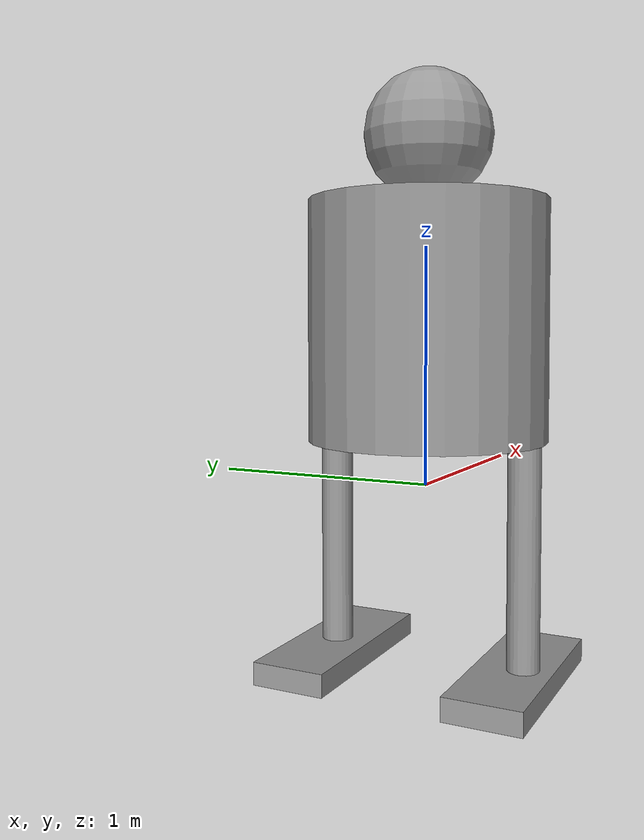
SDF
<?xml version='1.0'?>
<sdf version='1.6'>
  <model name='HumanoidRobot'>
    <link name='link_0'>
      <pose frame=''>0.00607 -0.402485 -0.763094 0 -0 0</pose>
      <inertial>
        <mass>0.0269632</mass>
        <inertia>
          <ixx>0.00025348</ixx>
          <ixy>0</ixy>
          <ixz>0</ixz>
          <iyy>0.00171945</iyy>
          <iyz>0</iyz>
          <izz>0.00193117</izz>
        </inertia>
        <pose frame=''>0 0 0 0 -0 0</pose>
      </inertial>
      <gravity>1</gravity>
      <self_collide>0</self_collide>
      <kinematic>0</kinematic>
      <visual name='visual'>
        <pose frame=''>0 0 0 0 -0 0</pose>
        <geometry>
          <box>
            <size>0.869453 0.321744 0.096398</size>
          </box>
        </geometry>
        <material>
          <lighting>1</lighting>
          <script>
            <uri>file://media/materials/scripts/gazebo.material</uri>
            <name>Gazebo/Grey</name>
          </script>
          <shader type='pixel'>
            <normal_map>__default__</normal_map>
          </shader>
          <ambient>0.3 0.3 0.3 1</ambient>
          <diffuse>0.7 0.7 0.7 1</diffuse>
          <specular>0.01 0.01 0.01 1</specular>
          <emissive>0 0 0 1</emissive>
        </material>
        <transparency>0</transparency>
        <cast_shadows>1</cast_shadows>
      </visual>
      <collision name='collision'>
        <laser_retro>0</laser_retro>
        <max_contacts>10</max_contacts>
        <pose frame=''>0 0 0 0 -0 0</pose>
        <geometry>
          <box>
            <size>0.869453 0.321744 0.096398</size>
          </box>
        </geometry>
        <surface>
          <friction>
            <ode>
              <mu>1</mu>
              <mu2>1</mu2>
              <fdir1>0 0 0</fdir1>
              <slip1>0</slip1>
              <slip2>0</slip2>
            </ode>
            <torsional>
              <coefficient>1</coefficient>
              <patch_radius>0</patch_radius>
              <surface_radius>0</surface_radius>
              <use_patch_radius>1</use_patch_radius>
              <ode>
                <slip>0</slip>
              </ode>
            </torsional>
          </friction>
          <bounce>
            <restitution_coefficient>0</restitution_coefficient>
            <threshold>1e+06</threshold>
          </bounce>
          <contact>
            <collide_without_contact>0</collide_without_contact>
            <collide_without_contact_bitmask>1</collide_without_contact_bitmask>
            <collide_bitmask>1</collide_bitmask>
            <ode>
              <soft_cfm>0</soft_cfm>
              <soft_erp>0.2</soft_erp>
              <kp>1e+13</kp>
              <kd>1</kd>
              <max_vel>0.01</max_vel>
              <min_depth>0</min_depth>
            </ode>
            <bullet>
              <split_impulse>1</split_impulse>
              <split_impulse_penetration_threshold>-0.01</split_impulse_penetration_threshold>
              <soft_cfm>0</soft_cfm>
              <soft_erp>0.2</soft_erp>
              <kp>1e+13</kp>
              <kd>1</kd>
            </bullet>
          </contact>
        </surface>
      </collision>
    </link>
    <link name='link_0_clone'>
      <pose frame=''>0.00607 0.426759 -0.763093 0 -0 0</pose>
      <inertial>
        <mass>0.0269632</mass>
        <inertia>
          <ixx>0.00025348</ixx>
          <ixy>0</ixy>
          <ixz>0</ixz>
          <iyy>0.00171945</iyy>
          <iyz>0</iyz>
          <izz>0.00193117</izz>
        </inertia>
        <pose frame=''>0 0 0 0 -0 0</pose>
      </inertial>
      <self_collide>0</self_collide>
      <kinematic>0</kinematic>
      <visual name='visual'>
        <pose frame=''>0 0 0 0 -0 0</pose>
        <geometry>
          <box>
            <size>0.869453 0.321744 0.096398</size>
          </box>
        </geometry>
        <material>
          <lighting>1</lighting>
          <script>
            <uri>file://media/materials/scripts/gazebo.material</uri>
            <name>Gazebo/Grey</name>
          </script>
          <shader type='pixel'>
            <normal_map>__default__</normal_map>
          </shader>
          <ambient>0.3 0.3 0.3 1</ambient>
          <diffuse>0.7 0.7 0.7 1</diffuse>
          <specular>0.01 0.01 0.01 1</specular>
          <emissive>0 0 0 1</emissive>
        </material>
        <transparency>0</transparency>
        <cast_shadows>1</cast_shadows>
      </visual>
      <collision name='collision'>
        <laser_retro>0</laser_retro>
        <max_contacts>10</max_contacts>
        <pose frame=''>0 0 0 0 -0 0</pose>
        <geometry>
          <box>
            <size>0.869453 0.321744 0.096398</size>
          </box>
        </geometry>
        <surface>
          <friction>
            <ode>
              <mu>1</mu>
              <mu2>1</mu2>
              <fdir1>0 0 0</fdir1>
              <slip1>0</slip1>
              <slip2>0</slip2>
            </ode>
            <torsional>
              <coefficient>1</coefficient>
              <patch_radius>0</patch_radius>
              <surface_radius>0</surface_radius>
              <use_patch_radius>1</use_patch_radius>
              <ode>
                <slip>0</slip>
              </ode>
            </torsional>
          </friction>
          <bounce>
            <restitution_coefficient>0</restitution_coefficient>
            <threshold>1e+06</threshold>
          </bounce>
          <contact>
            <collide_without_contact>0</collide_without_contact>
            <collide_without_contact_bitmask>1</collide_without_contact_bitmask>
            <collide_bitmask>1</collide_bitmask>
            <ode>
              <soft_cfm>0</soft_cfm>
              <soft_erp>0.2</soft_erp>
              <kp>1e+13</kp>
              <kd>1</kd>
              <max_vel>0.01</max_vel>
              <min_depth>0</min_depth>
            </ode>
            <bullet>
              <split_impulse>1</split_impulse>
              <split_impulse_penetration_threshold>-0.01</split_impulse_penetration_threshold>
              <soft_cfm>0</soft_cfm>
              <soft_erp>0.2</soft_erp>
              <kp>1e+13</kp>
              <kd>1</kd>
            </bullet>
          </contact>
        </surface>
      </collision>
    </link>
    <link name='link_1'>
      <pose frame=''>-0.030345 -0.4389 -0.311292 0 -0 0</pose>
      <inertial>
        <mass>0.0180474</mass>
        <inertia>
          <ixx>0.00152431</ixx>
          <ixy>0</ixy>
          <ixz>0</ixz>
          <iyy>0.00152431</iyy>
          <iyz>0</iyz>
          <izz>4.07136e-05</izz>
        </inertia>
        <pose frame=''>0 0 0 0 -0 0</pose>
      </inertial>
      <visual name='visual'>
        <pose frame=''>0 0 0 0 -0 0</pose>
        <geometry>
          <cylinder>
            <radius>0.0671703</radius>
            <length>1</length>
          </cylinder>
        </geometry>
        <material>
          <lighting>1</lighting>
          <script>
            <uri>file://media/materials/scripts/gazebo.material</uri>
            <name>Gazebo/Grey</name>
          </script>
          <shader type='pixel'/>
          <ambient>0.3 0.3 0.3 1</ambient>
          <diffuse>0.7 0.7 0.7 1</diffuse>
          <specular>0.01 0.01 0.01 1</specular>
          <emissive>0 0 0 1</emissive>
        </material>
        <transparency>0</transparency>
        <cast_shadows>1</cast_shadows>
      </visual>
      <collision name='collision'>
        <laser_retro>0</laser_retro>
        <max_contacts>10</max_contacts>
        <pose frame=''>0 0 0 0 -0 0</pose>
        <geometry>
          <cylinder>
            <radius>0.06717</radius>
            <length>1</length>
          </cylinder>
        </geometry>
        <surface>
          <friction>
            <ode>
              <mu>1</mu>
              <mu2>1</mu2>
              <fdir1>0 0 0</fdir1>
              <slip1>0</slip1>
              <slip2>0</slip2>
            </ode>
            <torsional>
              <coefficient>1</coefficient>
              <patch_radius>0</patch_radius>
              <surface_radius>0</surface_radius>
              <use_patch_radius>1</use_patch_radius>
              <ode>
                <slip>0</slip>
              </ode>
            </torsional>
          </friction>
          <bounce>
            <restitution_coefficient>0</restitution_coefficient>
            <threshold>1e+06</threshold>
          </bounce>
          <contact>
            <collide_without_contact>0</collide_without_contact>
            <collide_without_contact_bitmask>1</collide_without_contact_bitmask>
            <collide_bitmask>1</collide_bitmask>
            <ode>
              <soft_cfm>0</soft_cfm>
              <soft_erp>0.2</soft_erp>
              <kp>1e+13</kp>
              <kd>1</kd>
              <max_vel>0.01</max_vel>
              <min_depth>0</min_depth>
            </ode>
            <bullet>
              <split_impulse>1</split_impulse>
              <split_impulse_penetration_threshold>-0.01</split_impulse_penetration_threshold>
              <soft_cfm>0</soft_cfm>
              <soft_erp>0.2</soft_erp>
              <kp>1e+13</kp>
              <kd>1</kd>
            </bullet>
          </contact>
        </surface>
      </collision>
    </link>
    <link name='link_1_clone'>
      <pose frame=''>0.00607 0.426759 -0.311292 0 -0 0</pose>
      <inertial>
        <mass>0.0180474</mass>
        <inertia>
          <ixx>0.00152431</ixx>
          <ixy>0</ixy>
          <ixz>0</ixz>
          <iyy>0.00152431</iyy>
          <iyz>0</iyz>
          <izz>4.07136e-05</izz>
        </inertia>
        <pose frame=''>0 0 0 0 -0 0</pose>
      </inertial>
      <visual name='visual'>
        <pose frame=''>0 0 0 0 -0 0</pose>
        <geometry>
          <cylinder>
            <radius>0.0671703</radius>
            <length>1</length>
          </cylinder>
        </geometry>
        <material>
          <lighting>1</lighting>
          <script>
            <uri>file://media/materials/scripts/gazebo.material</uri>
            <name>Gazebo/Grey</name>
          </script>
          <shader type='pixel'/>
          <ambient>0.3 0.3 0.3 1</ambient>
          <diffuse>0.7 0.7 0.7 1</diffuse>
          <specular>0.01 0.01 0.01 1</specular>
          <emissive>0 0 0 1</emissive>
        </material>
        <transparency>0</transparency>
        <cast_shadows>1</cast_shadows>
      </visual>
      <collision name='collision'>
        <laser_retro>0</laser_retro>
        <max_contacts>10</max_contacts>
        <pose frame=''>0 0 0 0 -0 0</pose>
        <geometry>
          <cylinder>
            <radius>0.06717</radius>
            <length>1</length>
          </cylinder>
        </geometry>
        <surface>
          <friction>
            <ode>
              <mu>1</mu>
              <mu2>1</mu2>
              <fdir1>0 0 0</fdir1>
              <slip1>0</slip1>
              <slip2>0</slip2>
            </ode>
            <torsional>
              <coefficient>1</coefficient>
              <patch_radius>0</patch_radius>
              <surface_radius>0</surface_radius>
              <use_patch_radius>1</use_patch_radius>
              <ode>
                <slip>0</slip>
              </ode>
            </torsional>
          </friction>
          <bounce>
            <restitution_coefficient>0</restitution_coefficient>
            <threshold>1e+06</threshold>
          </bounce>
          <contact>
            <collide_without_contact>0</collide_without_contact>
            <collide_without_contact_bitmask>1</collide_without_contact_bitmask>
            <collide_bitmask>1</collide_bitmask>
            <ode>
              <soft_cfm>0</soft_cfm>
              <soft_erp>0.2</soft_erp>
              <kp>1e+13</kp>
              <kd>1</kd>
              <max_vel>0.01</max_vel>
              <min_depth>0</min_depth>
            </ode>
            <bullet>
              <split_impulse>1</split_impulse>
              <split_impulse_penetration_threshold>-0.01</split_impulse_penetration_threshold>
              <soft_cfm>0</soft_cfm>
              <soft_erp>0.2</soft_erp>
              <kp>1e+13</kp>
              <kd>1</kd>
            </bullet>
          </contact>
        </surface>
      </collision>
    </link>
    <link name='link_2'>
      <pose frame=''>0.00607 -0.00607 0.688708 0 -0 0</pose>
      <inertial>
        <mass>1</mass>
        <inertia>
          <ixx>0.145833</ixx>
          <ixy>0</ixy>
          <ixz>0</ixz>
          <iyy>0.145833</iyy>
          <iyz>0</iyz>
          <izz>0.125</izz>
        </inertia>
      </inertial>
      <visual name='visual'>
        <pose frame=''>0 0 0 0 -0 0</pose>
        <geometry>
          <cylinder>
            <radius>0.5</radius>
            <length>1</length>
          </cylinder>
        </geometry>
        <material>
          <lighting>1</lighting>
          <script>
            <uri>file://media/materials/scripts/gazebo.material</uri>
            <name>Gazebo/Grey</name>
          </script>
          <shader type='pixel'/>
          <ambient>0.3 0.3 0.3 1</ambient>
          <diffuse>0.7 0.7 0.7 1</diffuse>
          <specular>0.01 0.01 0.01 1</specular>
          <emissive>0 0 0 1</emissive>
        </material>
        <transparency>0</transparency>
        <cast_shadows>1</cast_shadows>
      </visual>
      <collision name='collision'>
        <laser_retro>0</laser_retro>
        <max_contacts>10</max_contacts>
        <pose frame=''>0 0 0 0 -0 0</pose>
        <geometry>
          <cylinder>
            <radius>0.5</radius>
            <length>1</length>
          </cylinder>
        </geometry>
        <surface>
          <friction>
            <ode>
              <mu>1</mu>
              <mu2>1</mu2>
              <fdir1>0 0 0</fdir1>
              <slip1>0</slip1>
              <slip2>0</slip2>
            </ode>
            <torsional>
              <coefficient>1</coefficient>
              <patch_radius>0</patch_radius>
              <surface_radius>0</surface_radius>
              <use_patch_radius>1</use_patch_radius>
              <ode>
                <slip>0</slip>
              </ode>
            </torsional>
          </friction>
          <bounce>
            <restitution_coefficient>0</restitution_coefficient>
            <threshold>1e+06</threshold>
          </bounce>
          <contact>
            <collide_without_contact>0</collide_without_contact>
            <collide_without_contact_bitmask>1</collide_without_contact_bitmask>
            <collide_bitmask>1</collide_bitmask>
            <ode>
              <soft_cfm>0</soft_cfm>
              <soft_erp>0.2</soft_erp>
              <kp>1e+13</kp>
              <kd>1</kd>
              <max_vel>0.01</max_vel>
              <min_depth>0</min_depth>
            </ode>
            <bullet>
              <split_impulse>1</split_impulse>
              <split_impulse_penetration_threshold>-0.01</split_impulse_penetration_threshold>
              <soft_cfm>0</soft_cfm>
              <soft_erp>0.2</soft_erp>
              <kp>1e+13</kp>
              <kd>1</kd>
            </bullet>
          </contact>
        </surface>
      </collision>
    </link>
    <link name='link_3'>
      <pose frame=''>0.00607 -0.00607 1.46007 0 -0 0</pose>
      <inertial>
        <mass>0.159872</mass>
        <inertia>
          <ixx>0.00470902</ixx>
          <ixy>0</ixy>
          <ixz>0</ixz>
          <iyy>0.00470902</iyy>
          <iyz>0</iyz>
          <izz>0.00470902</izz>
        </inertia>
        <pose frame=''>0 0 0 0 -0 0</pose>
      </inertial>
      <visual name='visual'>
        <pose frame=''>0 0 0 0 -0 0</pose>
        <geometry>
          <sphere>
            <radius>0.271362</radius>
          </sphere>
        </geometry>
        <material>
          <lighting>1</lighting>
          <script>
            <uri>file://media/materials/scripts/gazebo.material</uri>
            <name>Gazebo/Grey</name>
          </script>
          <shader type='pixel'/>
          <ambient>0.3 0.3 0.3 1</ambient>
          <diffuse>0.7 0.7 0.7 1</diffuse>
          <specular>0.01 0.01 0.01 1</specular>
          <emissive>0 0 0 1</emissive>
        </material>
        <transparency>0</transparency>
        <cast_shadows>1</cast_shadows>
      </visual>
      <collision name='collision'>
        <laser_retro>0</laser_retro>
        <max_contacts>10</max_contacts>
        <pose frame=''>0 0 0 0 -0 0</pose>
        <geometry>
          <sphere>
            <radius>0.271362</radius>
          </sphere>
        </geometry>
        <surface>
          <friction>
            <ode>
              <mu>1</mu>
              <mu2>1</mu2>
              <fdir1>0 0 0</fdir1>
              <slip1>0</slip1>
              <slip2>0</slip2>
            </ode>
            <torsional>
              <coefficient>1</coefficient>
              <patch_radius>0</patch_radius>
              <surface_radius>0</surface_radius>
              <use_patch_radius>1</use_patch_radius>
              <ode>
                <slip>0</slip>
              </ode>
            </torsional>
          </friction>
          <bounce>
            <restitution_coefficient>0</restitution_coefficient>
            <threshold>1e+06</threshold>
          </bounce>
          <contact>
            <collide_without_contact>0</collide_without_contact>
            <collide_without_contact_bitmask>1</collide_without_contact_bitmask>
            <collide_bitmask>1</collide_bitmask>
            <ode>
              <soft_cfm>0</soft_cfm>
              <soft_erp>0.2</soft_erp>
              <kp>1e+13</kp>
              <kd>1</kd>
              <max_vel>0.01</max_vel>
              <min_depth>0</min_depth>
            </ode>
            <bullet>
              <split_impulse>1</split_impulse>
              <split_impulse_penetration_threshold>-0.01</split_impulse_penetration_threshold>
              <soft_cfm>0</soft_cfm>
              <soft_erp>0.2</soft_erp>
              <kp>1e+13</kp>
              <kd>1</kd>
            </bullet>
          </contact>
        </surface>
      </collision>
    </link>
    <joint name='link_0_JOINT_0' type='fixed'>
      <parent>link_0</parent>
      <child>link_1</child>
      <pose frame=''>0 0 0 0 -0 0</pose>
      <physics>
        <ode>
          <limit>
            <cfm>0</cfm>
            <erp>0.2</erp>
          </limit>
          <suspension>
            <cfm>0</cfm>
            <erp>0.2</erp>
          </suspension>
        </ode>
      </physics>
    </joint>
    <joint name='link_1_JOINT_1' type='fixed'>
      <parent>link_1</parent>
      <child>link_2</child>
      <pose frame=''>0 0 0 0 -0 0</pose>
      <physics>
        <ode>
          <limit>
            <cfm>0</cfm>
            <erp>0.2</erp>
          </limit>
          <suspension>
            <cfm>0</cfm>
            <erp>0.2</erp>
          </suspension>
        </ode>
      </physics>
    </joint>
    <joint name='link_1_clone_JOINT_3' type='fixed'>
      <parent>link_1_clone</parent>
      <child>link_0_clone</child>
      <pose frame=''>0 0 0 0 -0 0</pose>
      <physics>
        <ode>
          <limit>
            <cfm>0</cfm>
            <erp>0.2</erp>
          </limit>
          <suspension>
            <cfm>0</cfm>
            <erp>0.2</erp>
          </suspension>
        </ode>
      </physics>
    </joint>
    <joint name='link_2_JOINT_2' type='fixed'>
      <parent>link_2</parent>
      <child>link_1_clone</child>
      <pose frame=''>0 0 0 0 -0 0</pose>
      <physics>
        <ode>
          <limit>
            <cfm>0</cfm>
            <erp>0.2</erp>
          </limit>
          <suspension>
            <cfm>0</cfm>
            <erp>0.2</erp>
          </suspension>
        </ode>
      </physics>
    </joint>
    <joint name='link_2_JOINT_5' type='fixed'>
      <parent>link_2</parent>
      <child>link_3</child>
      <pose frame=''>0 0 0 0 -0 0</pose>
      <physics>
        <ode>
          <limit>
            <cfm>0</cfm>
            <erp>0.2</erp>
          </limit>
          <suspension>
            <cfm>0</cfm>
            <erp>0.2</erp>
          </suspension>
        </ode>
      </physics>
    </joint>
    <static>0</static>
    <allow_auto_disable>1</allow_auto_disable>
  </model>
</sdf>
